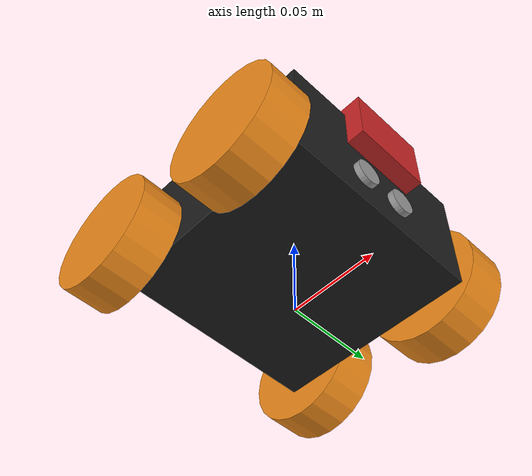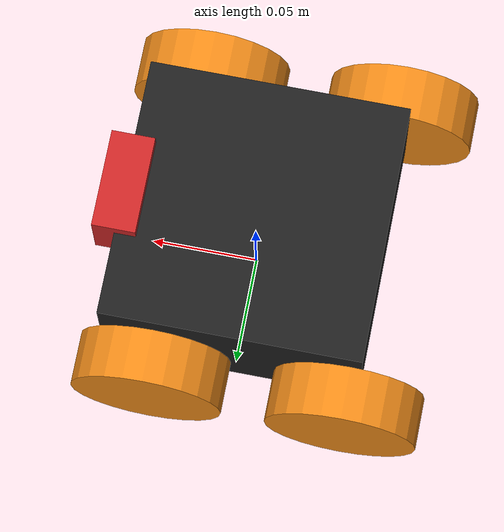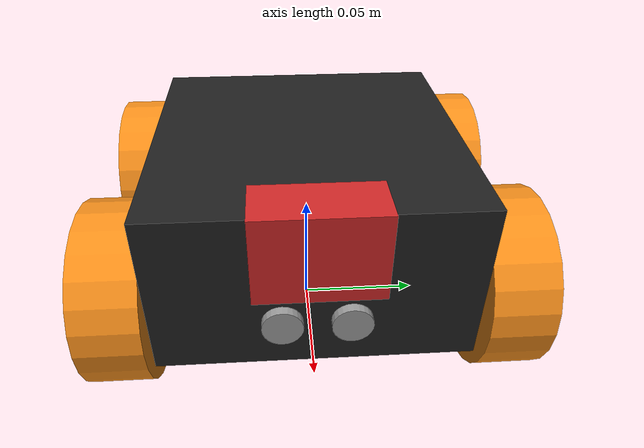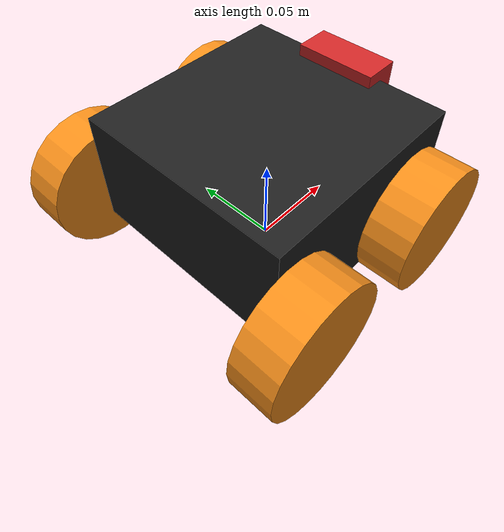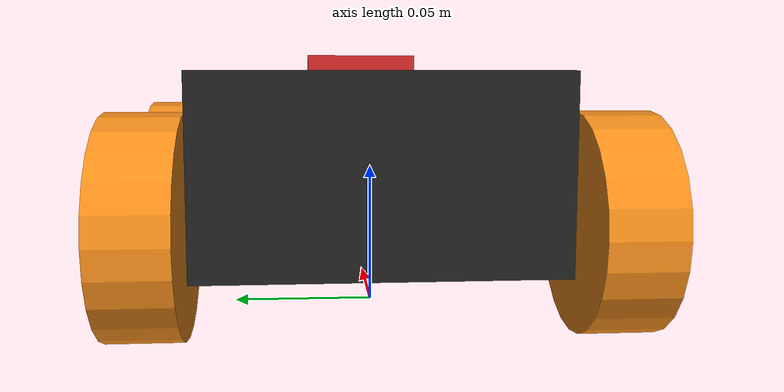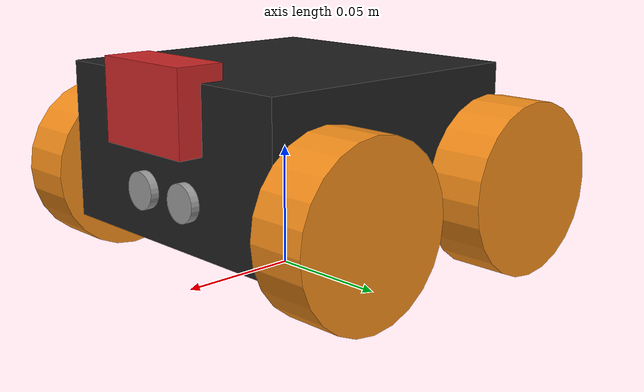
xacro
<?xml version="1.0"?>

<robot xmlns:xacro="http://www.ros.org/wiki/xacro" name="kssbot">

  <xacro:arg name="prefix" default="" />
  <xacro:arg name="use_ros2_control" default="true"/>
  <xacro:arg name="sim_mode" default="false"/>

  <!-- Basic differential drive mobile base -->
  <xacro:include filename="$(find kssbot_description)/urdf/kssbot_description.urdf.xacro" />

  <!-- Import Rviz colors -->
  <xacro:include filename="$(find kssbot_description)/urdf/kssbot.materials.xacro" />

  <!-- Import kssbot ros2_control description -->
  <!-- if use ros2_control  -->
  <xacro:if value="$(arg use_ros2_control)">

    <xacro:include filename="$(find kssbot_description)/ros2_control/kssbot.ros2_control.xacro" />

    <!-- this line is for urdf reading() -->
    <xacro:kssbot prefix="$(arg prefix)" />

    <!-- this line is for ros2_control reading(kssbot.ros2_control.xacro) -->
    <xacro:kssbot_ros2_control name="kssBot" prefix="$(arg prefix)" />

  </xacro:if>

  <!-- if use gazebo  -->
  <xacro:unless value="$(arg use_ros2_control)">

    <xacro:include filename="$(find kssbot_description)/ros2_control/kssbot.gazebo.xacro" />

  </xacro:unless>

  <!-- Add addtional component description -->

</robot>

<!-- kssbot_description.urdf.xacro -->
<robot xmlns:xacro="http://www.ros.org/wiki/xacro">

  <xacro:macro name="kssbot" params="prefix">

    <!-- Constants for robot dimensions -->
    <xacro:property name="PI" value="3.1415926535897931"/>

    <!-- arbitrary value for base value -->
    <xacro:property name="base_mass" value="0.1" />
    <xacro:property name="base_length" value="0.12" />
    <xacro:property name="base_width" value="0.12" />
    <xacro:property name="base_height" value="0.065" />
    <xacro:property name="base_offset" value="0.02" />

    <!-- arbitrary value for wheel value -->
    <xacro:property name="wheel_mass" value="0.06" />
    <xacro:property name="wheel_len" value="0.024" />
    <xacro:property name="wheel_radius" value="0.035" />

    <!-- Space btw top of beam and the each joint -->
    <xacro:property name="z_offset" value="${base_height/2}" />

    <!-- arbitrary value for ultrasonic eye value -->
    <xacro:property name="sonic_mass" value="0.06" />
    <xacro:property name="sonic_len" value="0.007" />
    <xacro:property name="sonic_radius" value="0.0075" />

    <!-- arbitrary value for front camera value -->
    <xacro:property name="cam_length" value="0.02" />
    <xacro:property name="cam_width" value="0.045" />
    <xacro:property name="cam_height" value="0.033" />

    <!-- Base Link -->
    <link
      name="base_link">
    </link>

    <!-- Base Footprint Joint -->
    <joint name="base_footprint_joint" type="fixed">
        <parent link="base_link"/>
        <child link="base_footprint"/>
        <origin xyz="0 0 0" rpy="0 0 0"/>
    </joint>

    <link
      name="base_footprint">
    </link>

    <!-- Chassis Joint -->
    <joint name="chassis_joint" type="fixed">
        <parent link="base_link"/>
        <child link="chassis"/>
        <origin xyz="0 0 ${base_offset + z_offset}"/>
    </joint>

    <!-- Chassis Link-->
    <link name="chassis">
      <visual>
        <origin xyz="0 0 0" rpy="0 0 0"/>
        <geometry>
          <box size="${base_length} ${base_width} ${base_height}"/>
        </geometry>
        <material name="black"/>
      </visual>

      <collision>
        <origin xyz="0 0 0" rpy="0 0 0"/>
        <geometry>
          <box size="${base_length} ${base_width} ${base_height}"/>
        </geometry>
      </collision>

      <inertial>
        <origin xyz="0 0 0" rpy="0 0 0"/>
        <mass value="${base_mass}"/>
        <inertia
          ixx="${base_mass / 12.0 * (base_length*base_length + base_height*base_height)}" ixy="0.0" ixz="0.0"
          iyy="${base_mass / 12.0 * (base_height*base_height + base_width*base_width)}" iyz="0.0"
          izz="${base_mass / 12.0 * (base_width*base_width + base_length*base_length)}"/>
      </inertial>
    </link>

    <!-- left wheel Joint -->
      <joint name="left_wheel_joint" type="continuous">
      <parent link="chassis"/>
      <child link="left_wheel"/>
      <origin xyz="0.035 ${base_width/2 + wheel_len/2} ${base_offset-wheel_radius}" rpy="0 0 0"/>
      <axis xyz="0 1 0"/>
      <dynamics damping="0.2"/>
    </joint>

    <!-- left wheel Link -->
    <link name="left_wheel">
      <collision>
        <origin xyz="0 0 0" rpy="0 0 0"/>
        <geometry>
          <cylinder length="${wheel_len}" radius="${wheel_radius}"/>
        </geometry>
      </collision>

      <visual>
        <origin xyz="0 0 0" rpy="${pi/2} 0 0"/>
        <geometry>
          <cylinder length="${wheel_len}" radius="${wheel_radius}"/>
        </geometry>
        <material name="orange"/>
      </visual>

      <inertial>
        <origin xyz="0 0 0" rpy="0 0 0"/>
        <mass value="${wheel_mass}"/>
        <inertia
          ixx="${wheel_mass / 12.0 * (3*wheel_radius + wheel_len*wheel_len)}" ixy="0.0" ixz="0.0"
          iyy="${wheel_mass / 12.0 * wheel_radius*wheel_radius}" iyz="0.0"
          izz="${wheel_mass / 12.0 * wheel_radius*wheel_radius}"/>
        </inertial>
    </link>

    <!-- left wheel dummy Joint -->
    <joint name="left_wheel_dummy_joint" type="fixed">
      <parent link="chassis"/>
      <child link="left_wheel_dummy"/>
      <origin xyz="-0.055 ${base_width/2 + wheel_len/2} ${base_offset-wheel_radius}" rpy="0 0 0"/>
      <axis xyz="0 1 0"/>
      <dynamics damping="0.2"/>
    </joint>

    <!-- left wheel dummy Link -->
    <link name="left_wheel_dummy">
      <collision>
        <origin xyz="0 0 0" rpy="0 0 0"/>
        <geometry>
          <cylinder length="${wheel_len}" radius="${wheel_radius}"/>
        </geometry>
      </collision>

      <visual>
        <origin xyz="0 0 0" rpy="${pi/2} 0 0"/>
        <geometry>
          <cylinder length="${wheel_len}" radius="${wheel_radius}"/>
        </geometry>
        <material name="orange"/>
      </visual>

      <inertial>
        <origin xyz="0 0 0" rpy="0 0 0"/>
        <mass value="${wheel_mass}"/>
        <inertia
          ixx="${wheel_mass / 12.0 * (3*wheel_radius + wheel_len*wheel_len)}" ixy="0.0" ixz="0.0"
          iyy="${wheel_mass / 12.0 * wheel_radius*wheel_radius}" iyz="0.0"
          izz="${wheel_mass / 12.0 * wheel_radius*wheel_radius}"/>
        </inertial>
    </link>

    <!-- right wheel Joint -->
      <joint name="right_wheel_joint" type="continuous">
      <parent link="chassis"/>
      <child link="right_wheel"/>
      <origin xyz="0.035 -${base_width/2 + wheel_len/2} ${base_offset-wheel_radius}" rpy="0 0 0"/>
      <axis xyz="0 1 0"/>
      <dynamics damping="0.2"/>
    </joint>

    <!-- right wheel Link -->
    <link name="right_wheel">
      <collision>
        <origin xyz="0 0 0" rpy="0 0 0"/>
        <geometry>
          <cylinder length="${wheel_len}" radius="${wheel_radius}"/>
        </geometry>
      </collision>

      <visual>
        <origin xyz="0 0 0" rpy="${pi/2} 0 0"/>
        <geometry>
          <cylinder length="${wheel_len}" radius="${wheel_radius}"/>
        </geometry>
        <material name="orange"/>
      </visual>

      <inertial>
        <origin xyz="0 0 0" rpy="0 0 0"/>
        <mass value="${wheel_mass}"/>
        <inertia
          ixx="${wheel_mass / 12.0 * (3*wheel_radius + wheel_len*wheel_len)}" ixy="0.0" ixz="0.0"
          iyy="${wheel_mass / 12.0 * wheel_radius*wheel_radius}" iyz="0.0"
          izz="${wheel_mass / 12.0 * wheel_radius*wheel_radius}"/>
        </inertial>
    </link>

    <!-- right wheel dummy Joint -->
    <joint name="right_wheel_dummy_joint" type="fixed">
      <parent link="chassis"/>
      <child link="right_wheel_dummy"/>
      <origin xyz="-0.055 -${base_width/2 + wheel_len/2} ${base_offset-wheel_radius}" rpy="0 0 0"/>
      <axis xyz="0 1 0"/>
      <dynamics damping="0.2"/>
    </joint>

    <!-- right wheel dummy Link -->
    <link name="right_wheel_dummy">
      <collision>
        <origin xyz="0 0 0" rpy="0 0 0"/>
        <geometry>
          <cylinder length="${wheel_len}" radius="${wheel_radius}"/>
        </geometry>
      </collision>

      <visual>
        <origin xyz="0 0 0" rpy="${pi/2} 0 0"/>
        <geometry>
          <cylinder length="${wheel_len}" radius="${wheel_radius}"/>
        </geometry>
        <material name="orange"/>
      </visual>

      <inertial>
        <origin xyz="0 0 0" rpy="0 0 0"/>
        <mass value="${wheel_mass}"/>
        <inertia
          ixx="${wheel_mass / 12.0 * (3*wheel_radius + wheel_len*wheel_len)}" ixy="0.0" ixz="0.0"
          iyy="${wheel_mass / 12.0 * wheel_radius*wheel_radius}" iyz="0.0"
          izz="${wheel_mass / 12.0 * wheel_radius*wheel_radius}"/>
        </inertial>
    </link>

    <!-- left ultrasonic eye Joint -->
    <joint name="left_ultrasonic_eye_joint" type="fixed">
      <parent link="chassis"/>
      <child link="left_ultrasonic_eye"/>
      <origin xyz="0.06 0.0125 -0.0125" rpy="0 0 0"/>
      <axis xyz="0 1 0"/>
      <dynamics damping="0.2"/>
    </joint>

    <!-- left ultrasonic eye Link -->
    <link name="left_ultrasonic_eye">
      <collision>
        <origin xyz="0 0 0" rpy="0 0 0"/>
        <geometry>
          <cylinder length="0.007" radius="0.0075"/>
        </geometry>
      </collision>

      <visual>
        <origin xyz="0 0 0" rpy="0 ${pi/2} 0"/>
        <geometry>
          <cylinder length="${sonic_len}" radius="${sonic_radius}"/>
        </geometry>
        <material name="grey"/>
      </visual>

    </link>

    <!-- right ultrasonic eye Joint -->
    <joint name="right_ultrasonic_eye_joint" type="fixed">
      <parent link="chassis"/>
      <child link="right_ultrasonic_eye"/>
      <origin xyz="0.06 -0.0125 -0.0125" rpy="0 0 0"/>
      <axis xyz="0 1 0"/>
      <dynamics damping="0.2"/>
    </joint>

    <!-- right ultrasonic eye Link -->
    <link name="right_ultrasonic_eye">
      <collision>
        <origin xyz="0 0 0" rpy="0 0 0"/>
        <geometry>
          <cylinder length="${sonic_len}" radius="${sonic_radius}"/>
        </geometry>
      </collision>

      <visual>
        <origin xyz="0 0 0" rpy="0 ${pi/2} 0"/>
        <geometry>
          <cylinder length="0.007" radius="0.0075"/>
        </geometry>
        <material name="grey"/>
      </visual>

    </link>

    <!-- front camera Joint -->
    <joint name="front_camera_joint" type="fixed">
      <parent link="chassis"/>
      <child link="front_camera"/>
      <origin xyz="0.06 0 0.0225" rpy="0 0 0"/>
    </joint>

    <!-- front camera Link -->
    <link name="front_camera">

      <collision>
        <origin xyz="0 0 0" rpy="0 0 0"/>
        <geometry>
          <box size="${cam_length} ${cam_width} ${cam_height}"/>
        </geometry>
      </collision>

      <visual>
        <origin xyz="0 0 0" rpy="0 0 0"/>
        <geometry>
          <box size="${cam_length} ${cam_width} ${cam_height}"/>
        </geometry>
        <material name="red"/>
      </visual>

    </link>

  </xacro:macro>

</robot>
